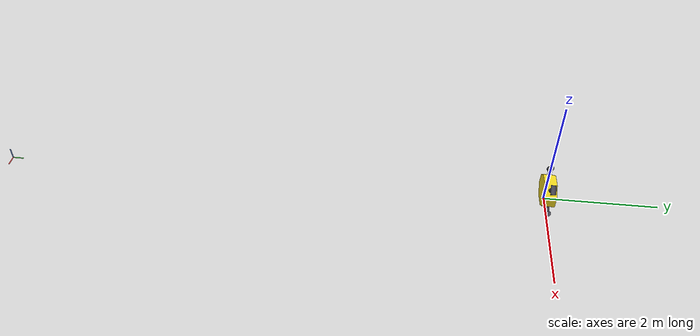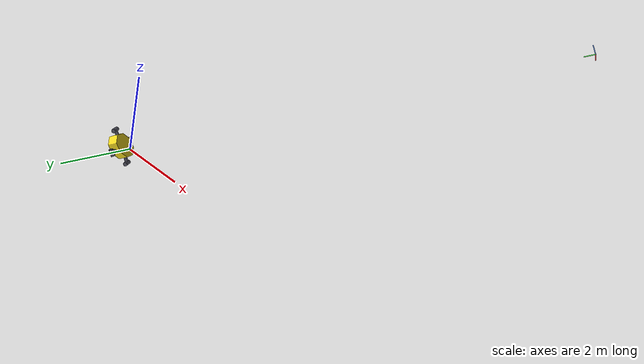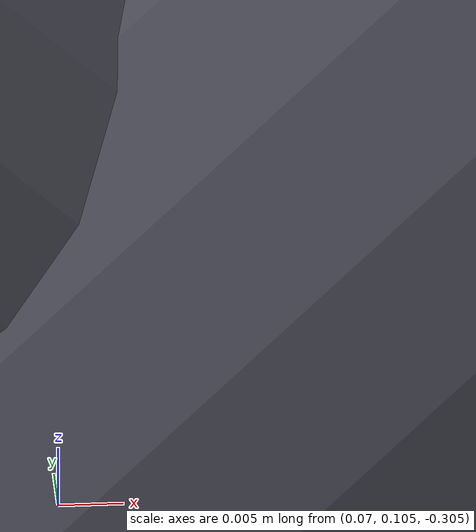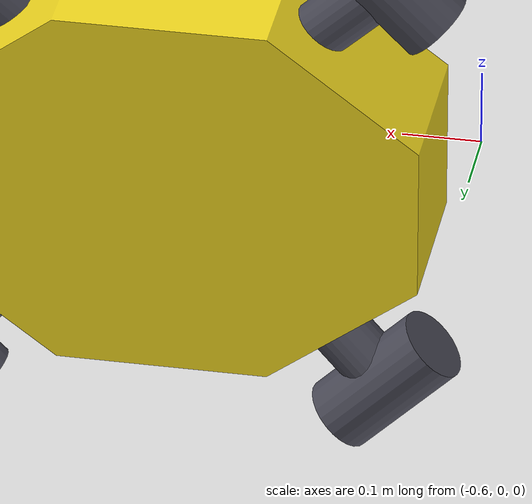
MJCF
<?xml version="1.0" encoding="UTF-8"?>
<mujoco model="umiusi">
  <compiler angle="degree" autolimits="true"/>
  <option timestep="0.002" gravity="0 -9.81 0" integrator="implicitfast"/>

  <visual>
    <global offwidth="1280" offheight="960"/>
  </visual>

  <default>
    <geom contype="0" conaffinity="0" rgba="0.3 0.3 0.35 1"/>  <!-- default (thrusters); hull overrides -->
    <joint damping="0.15"/>
    <position kp="40.0" kv="2.0" forcerange="-1.0 1.0"/>
  </default>

  <asset>
    <mesh name="hull_prism"
          vertex="0.32426 0.11000 0.10141 0.32426 -0.11000 0.10141 0.13431 0.11000 0.24482
                  0.13431 -0.11000 0.24482 -0.13431 0.11000 0.24482 -0.13431 -0.11000 0.24482
                  -0.32426 0.11000 0.10141 -0.32426 -0.11000 0.10141 -0.32426 0.11000 -0.10141
                  -0.32426 -0.11000 -0.10141 -0.13431 0.11000 -0.24482 -0.13431 -0.11000 -0.24482
                  0.13431 0.11000 -0.24482 0.13431 -0.11000 -0.24482 0.32426 0.11000 -0.10141
                  0.32426 -0.11000 -0.10141"/>
  </asset>

  <worldbody>
    <light name="top" pos="0 2 0" dir="0 -1 0" diffuse="0.8 0.8 0.8"/>
    <!-- Fixed cameras framed for the +Y-up CAD frame (MuJoCo's free camera assumes Z-up,
         so use these for an upright view in the GUI and for snapshots). -->
    <!-- Aimed at the vehicle center (~x=-0.23, not the world origin) and pulled back so the whole
         robot fits without clipping. xyaxes keeps +Y up for this Y-up model. -->
    <camera name="iso" pos="0.688 0.742 0.919" xyaxes="0.707 0 -0.707  -0.313 0.897 -0.313"/>
    <camera name="top" pos="-0.2 1.8 0" xyaxes="1 0 0  0 0 -1"/>
    <!-- Follows the vehicle CoM (keeps it centred and upright even as it drifts) — used by RL eval. -->
    <camera name="track" mode="trackcom" pos="0.92 0.65 0.92" xyaxes="0.707 0 -0.707  -0.313 0.897 -0.313"/>

    <body name="target_marker" mocap="true" pos="0 -10 0">
      <geom type="box" size="0.10 0.006 0.006" pos="0.10 0 0" rgba="1 0 0 0.7" contype="0" conaffinity="0" mass="0.0002"/>
      <geom type="box" size="0.006 0.10 0.006" pos="0 0.10 0" rgba="0.1 1 0.1 0.7" contype="0" conaffinity="0" mass="0.0002"/>
      <geom type="box" size="0.006 0.006 0.10" pos="0 0 0.10" rgba="0.2 0.5 1 0.7" contype="0" conaffinity="0" mass="0.0002"/>
    </body>

    <body name="base_link" pos="0 0 0">
      <freejoint name="floating_base"/>
      <!-- Measured inertial (overrides geom-derived inertia for this body). -->
      <inertial pos="-0.241053 0.093368 0.000327" mass="9.963939"
                fullinertia="0.1865 0.4736 0.3380 1.499e-4 4.590e-4 -8.78e-7"/>
      <!-- Coarse octagonal-prism hull, placed at the bbox center (visual only). -->
      <geom name="hull" type="mesh" mesh="hull_prism" pos="-0.23098 0.100 0.0" rgba="0.95 0.85 0.12 1"/>

      <camera name="front_cam" pos="0.10 0.12 0.0" xyaxes="0 0 1  0 1 0" fovy="60"/>
      <camera name="down_cam" pos="-0.23 -0.02 0.0" xyaxes="0 0 1  1 0 0" fovy="60"/>

      <body name="thruster_1" pos="-0.02278 0.09815 -0.18722">
        <joint name="servo_1" type="hinge" axis="0.70110 0.11891 -0.70308" range="-90 90"/>
        <geom name="t1_arm" type="cylinder" fromto="0 0 0  0.10436 0.01770 -0.10465" size="0.038" mass="0.13"/>
        <geom name="t1_duct" type="cylinder" fromto="0.04488 0.01770 -0.16397  0.16384 0.01770 -0.04534" size="0.049" mass="0.5"/>
        <site name="t1_thrust" pos="0.10436 0.01770 -0.10465" size="0.012" rgba="1 0 0 1"/>
      </body>

      <body name="thruster_2" pos="-0.39722 0.09815 -0.18722">
        <joint name="servo_2" type="hinge" axis="-0.70110 0.11891 -0.70308" range="-90 90"/>
        <geom name="t2_arm" type="cylinder" fromto="0 0 0  -0.10436 0.01770 -0.10465" size="0.038" mass="0.13"/>
        <geom name="t2_duct" type="cylinder" fromto="-0.16384 0.01770 -0.04534  -0.04488 0.01770 -0.16397" size="0.049" mass="0.5"/>
        <site name="t2_thrust" pos="-0.10436 0.01770 -0.10465" size="0.012" rgba="1 0 0 1"/>
      </body>

      <body name="thruster_3" pos="-0.02278 0.09815 0.18722">
        <joint name="servo_3" type="hinge" axis="0.70110 0.11891 0.70308" range="-90 90"/>
        <geom name="t3_arm" type="cylinder" fromto="0 0 0  0.10436 0.01770 0.10465" size="0.038" mass="0.13"/>
        <geom name="t3_duct" type="cylinder" fromto="0.16384 0.01770 0.04534  0.04488 0.01770 0.16397" size="0.049" mass="0.5"/>
        <site name="t3_thrust" pos="0.10436 0.01770 0.10465" size="0.012" rgba="1 0 0 1"/>
      </body>

      <body name="thruster_4" pos="-0.39722 0.09815 0.18722">
        <joint name="servo_4" type="hinge" axis="-0.70110 0.11891 0.70308" range="-90 90"/>
        <geom name="t4_arm" type="cylinder" fromto="0 0 0  -0.10436 0.01770 0.10465" size="0.038" mass="0.13"/>
        <geom name="t4_duct" type="cylinder" fromto="-0.04488 0.01770 0.16397  -0.16384 0.01770 0.04534" size="0.049" mass="0.5"/>
        <site name="t4_thrust" pos="-0.10436 0.01770 0.10465" size="0.012" rgba="1 0 0 1"/>
      </body>
    </body>
  </worldbody>

  <actuator>
    <position name="servo_1" joint="servo_1" ctrlrange="-90 90"/>
    <position name="servo_2" joint="servo_2" ctrlrange="-90 90"/>
    <position name="servo_3" joint="servo_3" ctrlrange="-90 90"/>
    <position name="servo_4" joint="servo_4" ctrlrange="-90 90"/>
  </actuator>
</mujoco>
